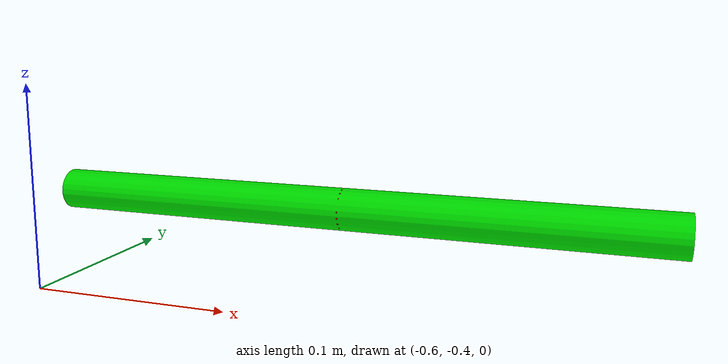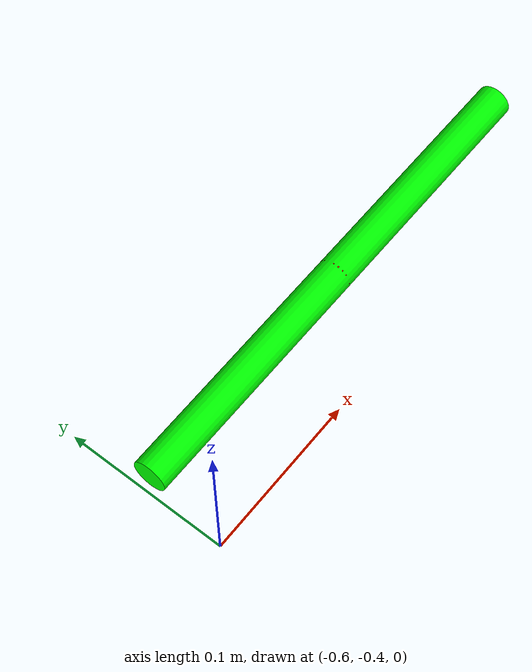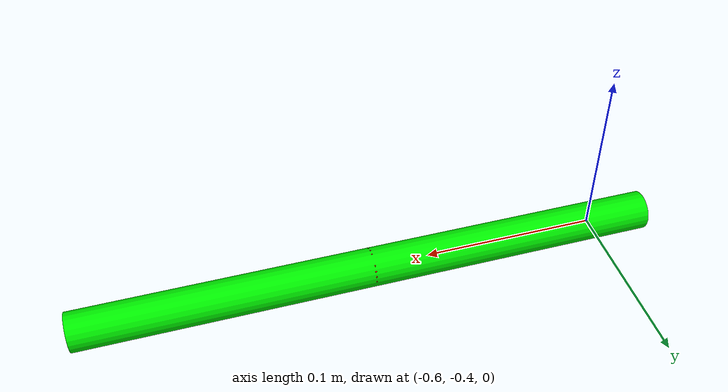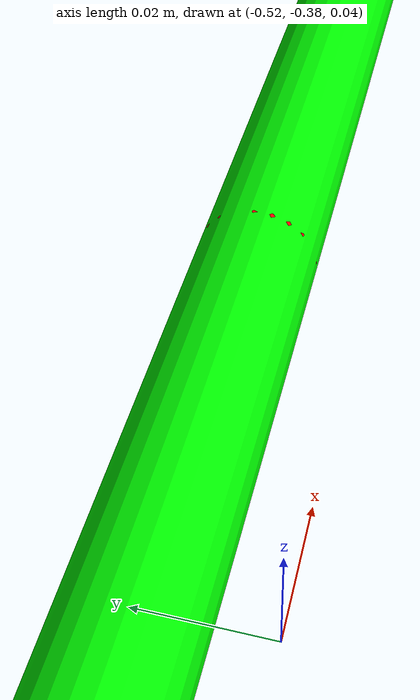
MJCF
<mujoco model="aliengo_description">
    <compiler angle="radian" meshdir="./assets/" autolimits="true"/>
    <option cone="elliptic" impratio="100" />
    <size njmax="500" nconmax="100" />
    <option gravity='0 0 -9.806' timestep='0.002'/>

    <default>
        <geom contype="1" conaffinity="1" friction="0.8 0.02 0.01" rgba="0.5 0.6 0.7 1" margin="0.001" group="0"/>

        <light castshadow="false" diffuse="1 1 1"/>
        <motor ctrlrange="-44.4 44.4" ctrllimited="true"/>
        <camera fovy="60"/>
        <joint damping="3" armature="0.01" frictionloss="0.2" />

    </default>
    <!-- No rename the assests these are the mesh files-->
    <asset>

        <mesh name="base_arm_link" file="HQR_1666_C4_Mount.stl" scale="0.001 0.001 0.001"/>
        <mesh name="arm_link_1" file="hyq_arm_link1.stl" scale="0.001 0.001 0.001" />
        <mesh name="arm_link_2" file="hyq_arm_link2.stl" scale="0.001 0.001 0.001" />
        <mesh name="arm_link_3" file="hyq_arm_link3.stl" scale="0.001 0.001 0.001" />
    </asset>

    <default>
        <geom contype="1" conaffinity="1" friction="0.8 0.02 0.01" rgba="0.5 0.6 0.7 1" margin="0.001" group="0"/>

        <light castshadow="false" diffuse="1 1 1"/>
        <camera fovy="60"/>

        <default class="visual_arm">
            <geom type="mesh" contype="0" conaffinity="0" group="4"/>
        </default>
        <default class="collision_arm">
            <geom group="5"/>
        </default>

    </default>
    <asset>
      <texture type="skybox" builtin="gradient" rgb1="0.3 0.5 0.7" rgb2="0 0 0" width="512" height="3072"/>
      <texture type="2d" name="groundplane" builtin="checker" mark="edge" rgb1="0.2 0.3 0.4" rgb2="0.1 0.2 0.3"
        markrgb="0.8 0.8 0.8" width="300" height="300"/>
      <material name="groundplane" texture="groundplane" texuniform="true" texrepeat="5 5" reflectance="0.2"/>
    </asset>
    <!-- pos is used to set the position-->
    <worldbody>
        <light directional="true" diffuse=".8 .8 .8" pos="0 0 10" dir="0 0 -10"/>
        <camera pos="1.794 0.068 0.397" mode="trackcom" xyaxes="0.008 1.000 0.000 -0.155 0.001 0.988"/>
        <camera name="follower/track" mode="trackcom" pos="0 -1.3 1.6" xyaxes="1 0 0 0 0.707 0.707"/>

            <body name="arm_base" pos="0. 0 0.056" >

                    <inertial pos="0. 0.0 0.0" quat="0 0 0 1" mass="0.02" diaginertia="0.000004622 0.000004495 0.000002079" />

                    <geom class="visual_arm" quat="-1 0 0 0" type="mesh" rgba="0.3 0.3 0.3 1" mesh="base_arm_link"/>
                    <geom class="collision_arm" quat="-1 0 0 0" type="mesh" rgba="0.3 0.3 0.3 1" mesh="base_arm_link"/>

                    <body name="arm_link_0" pos="-0.385 0.04 0.06" quat="0.5 0 0 -0.5">
                        <inertial pos="0. 0 0." quat="1 0 0 0" mass="0.05" diaginertia="0.000004622 0.000004495 0.000002079" />
                        <joint name="arm_link_1_joint" pos="0. -0.075 0." axis="0 0 1" limited="true" range="-22 22"  stiffness="100"
                        damping="10" /> <!-- Joint 1 limit is btwn -22 and 22-->

                        <geom class="visual_arm" quat="0 0 0 1" type="mesh" rgba="0.3 0.3 0.3 1" mesh="arm_link_1"/>
                        <geom class="collision_arm" quat="0 0 0 1" type="mesh" rgba="0.3 0.3 0.3 1" mesh="arm_link_1"/>

                        <body name="follower/arm_link_1" pos="0.094 -0.007 -0.05 " quat="1 0. -0.2 0">
                            <inertial pos="0.0194 0.0 -0.125" quat="0 0 0 1" mass="0.05" diaginertia="0.00000457 0.000004831 0.000001409" />
                             <!-- Joint 2 limit is btwn -30 and 30, arm rest flat at 180deg with link1 when load is applied-->
                            <joint name="arm_link_2_joint" pos="0.2 -0.007 0.1 " axis="0 1 0" limited="true" range="-30 30" stiffness="100"
                            damping="10" />

                            <geom class="visual_arm" quat="0 0 0 1" type="mesh" rgba="0.3 0.3 0.3 1" mesh="arm_link_2"/>
                            <geom class="collision_arm" quat="0 0 0 1" type="mesh" rgba="0.3 0.3 0.3 1" mesh="arm_link_2"/>

                            <body name="arm_link_2" pos="-0.675 0.006 -0.265" quat="1 0. 0 0">
                                <inertial pos="0.0388 0.0 -0.25" quat="1 0 0 0" mass="0.0220" diaginertia="0.000011088 0.00001072 0.000011255" />
                                 <!-- Joint 3 limit is btwn -50 and 16(towards robot so down)-->
                                <joint name="arm_link_3_joint" pos="0.95 0.006 0.4" axis="0 1 0" limited="true" range="-50 16" stiffness="100"
                                damping="10" />

                                <geom class="visual_arm" quat="0 0 0 1" type="mesh" rgba="0.3 0.3 0.3 1" mesh="arm_link_3"/>
                                <geom class="collision_arm" quat="0 0 0 1" type="mesh" rgba="0.3 0.3 0.3 1" mesh="arm_link_3"/>

                                <body name="eef" pos="0.95 -0.07 0.125" quat="1 1 -0. 0">
                                    <inertial pos="0 0 0" mass="40" diaginertia="0.00001 0.00001 0.00001"/>
                                    <geom name="eef_geom" type="cylinder" size="0.01 0.15 0.1" rgba="0 1 0 1" contype="0" conaffinity="0"/>
                                    <site name="eef_contact" pos="0 0 0" size="0.01" rgba="1 0 0 1"/>
                                </body>
                            </body>
                        </body>
                    </body>
            </body>

        <!-- add a box mounting point -->

    </worldbody>

    <actuator>

        <!-- second robot-->

    </actuator>

    <sensor>

    </sensor>

    <!--this defines the initial position of the robot-->
</mujoco>
